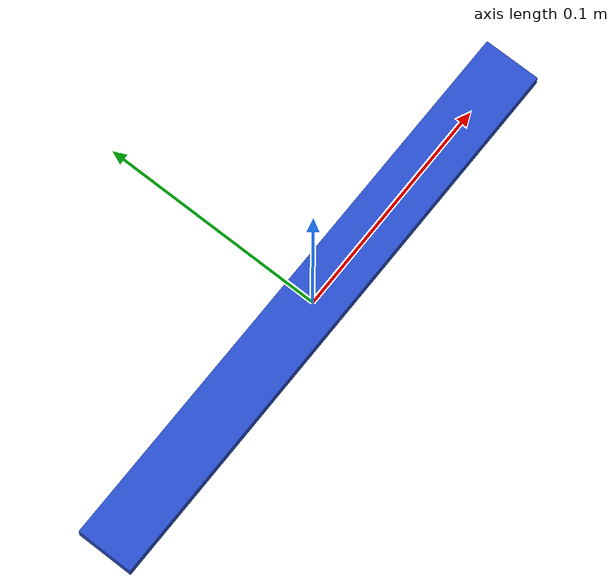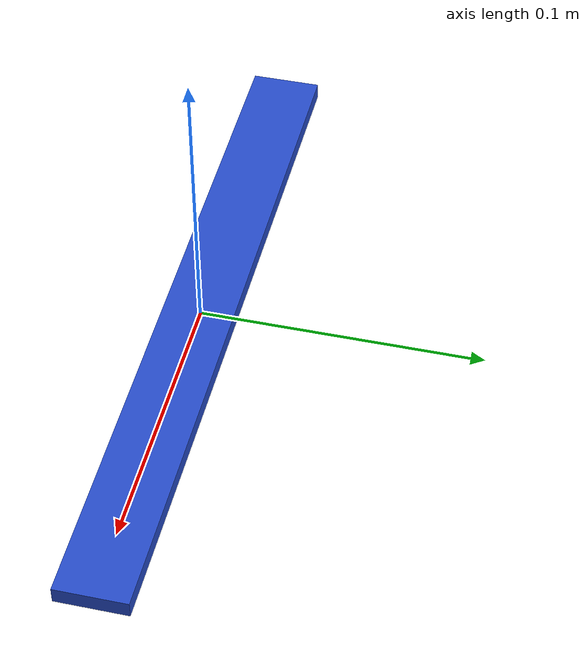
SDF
<?xml version="1.0" ?>

<sdf version="1.5">
  <model name="pendulum_quadcopter_prop">
    <link name="prop">
      <pose>0 0 0 0 0 0</pose>
      <inertial>
        <pose>0 0 0 0 0 0</pose>
        <mass>0.025</mass>
        <inertia>
          <ixx>1.3770833333333338e-06</ixx>
          <ixy>0</ixy>
          <ixz>0</ixz>
          <iyy>0.00013448333333333334</iyy>
          <iyz>0</iyz>
          <izz>0.00013571041666666668</izz>
        </inertia>
      </inertial>
      <collision name="rotor_collision">
        <pose>0 0 0 0 0 0</pose>
        <geometry>
          <box>
            <size>0.254 0.025 0.006</size>
          </box>
        </geometry>
        <surface>
          <contact>
            <ode />
          </contact>
          <friction>
            <ode />
          </friction>
        </surface>
      </collision>
      <visual name="prop_visual">
        <pose>0 0 0 0 0 0</pose>
        <geometry>
          <box>
            <size>0.254 0.025 0.006</size>
          </box>
        </geometry>
        <material>
          <script>
            <name>Gazebo/Blue</name>
          </script>
        </material>
      </visual>
      <gravity>1</gravity>
      <velocity_decay />
      <self_collide>0</self_collide>
    </link>
  </model>
</sdf>
